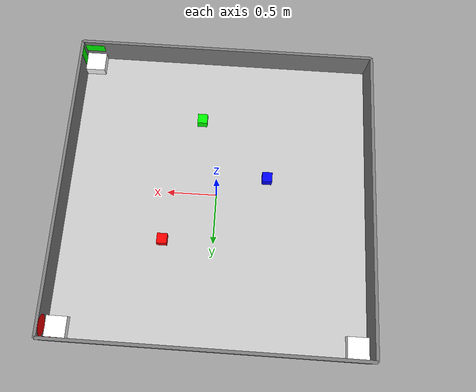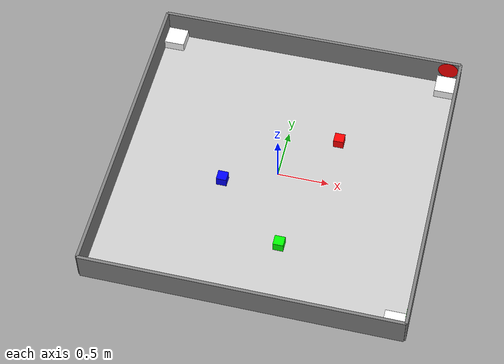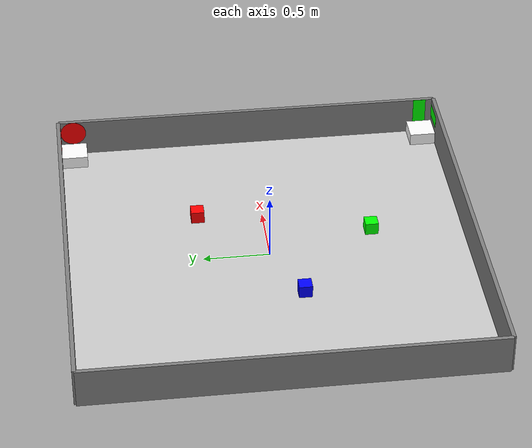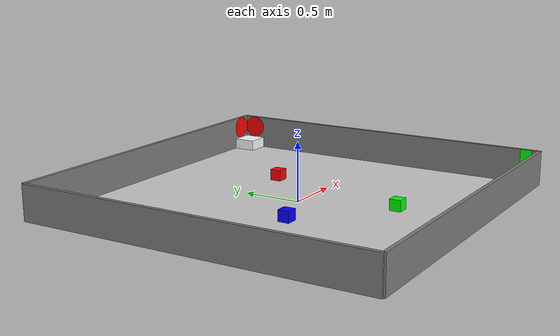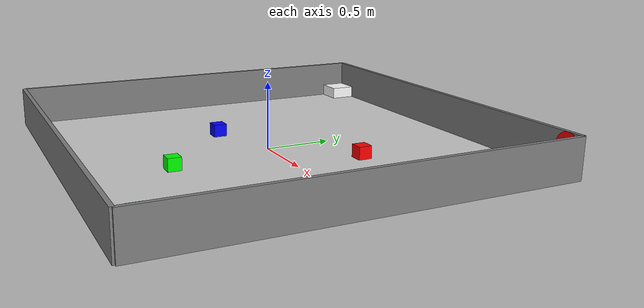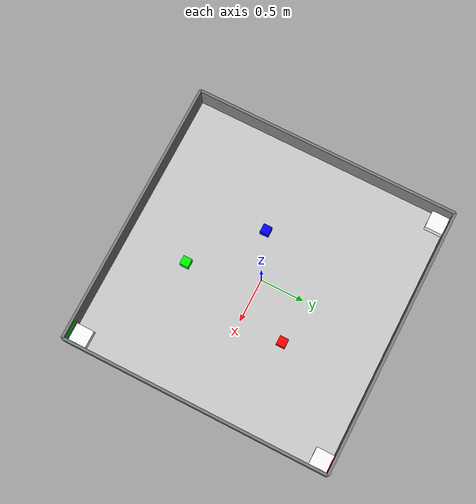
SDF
<sdf version="1.6">
 <world name="sorting_round">
  <light type="directional" name="sun">
   <pose>0 0 10 0 0 0</pose>
   <diffuse>0.8 0.8 0.8 1</diffuse>
   <specular>0.2 0.2 0.2 1</specular>
   <attenuation>
    <range>1000</range>
    <constant>0.9</constant>
    <linear>0.01</linear>
    <quadratic>0.001</quadratic>
   </attenuation>
   <direction>-0.5 0.1 -0.9</direction>
  </light>
  <model name="arena_floor">
   <static>true</static>
   <link name="link">
    <collision name="collision"><geometry><box><size>3 3 0.01</size></box></geometry></collision>
    <visual name="visual">
     <geometry><box><size>3 3 0.01</size></box></geometry>
     <material>
      <ambient>0.8 0.8 0.8 1</ambient>
      <diffuse>0.8 0.8 0.8 1</diffuse>
      <specular>0.1 0.1 0.1 1</specular>
     </material>
    </visual>
   </link>
  </model>
  <model name="arena_walls">
   <static>true</static>
   <pose>0 0 0.15 0 0 0</pose>
   <link name="link">
    <collision name="collision_north">
     <pose>0 1.515 0 0 0 0</pose>
     <geometry><box><size>3.03 0.03 0.3</size></box></geometry>
    </collision>
    <visual name="visual_north">
     <pose>0 1.515 0 0 0 0</pose>
     <geometry><box><size>3.03 0.03 0.3</size></box></geometry>
     <material><ambient>0.5 0.5 0.5 1</ambient><diffuse>0.5 0.5 0.5 1</diffuse></material>
    </visual>
    <collision name="collision_south">
     <pose>0 -1.515 0 0 0 0</pose>
     <geometry><box><size>3.03 0.03 0.3</size></box></geometry>
    </collision>
    <visual name="visual_south">
     <pose>0 -1.515 0 0 0 0</pose>
     <geometry><box><size>3.03 0.03 0.3</size></box></geometry>
     <material><ambient>0.5 0.5 0.5 1</ambient><diffuse>0.5 0.5 0.5 1</diffuse></material>
    </visual>
    <collision name="collision_east">
     <pose>1.515 0 0 0 0 0</pose>
     <geometry><box><size>0.03 3.03 0.3</size></box></geometry>
    </collision>
    <visual name="visual_east">
     <pose>1.515 0 0 0 0 0</pose>
     <geometry><box><size>0.03 3.03 0.3</size></box></geometry>
     <material><ambient>0.5 0.5 0.5 1</ambient><diffuse>0.5 0.5 0.5 1</diffuse></material>
    </visual>
    <collision name="collision_west">
     <pose>-1.515 0 0 0 0 0</pose>
     <geometry><box><size>0.03 3.03 0.3</size></box></geometry>
    </collision>
    <visual name="visual_west">
     <pose>-1.515 0 0 0 0 0</pose>
     <geometry><box><size>0.03 3.03 0.3</size></box></geometry>
     <material><ambient>0.5 0.5 0.5 1</ambient><diffuse>0.5 0.5 0.5 1</diffuse></material>
    </visual>
   </link>
  </model>
  <model name="platform_red">
   <static>true</static>
   <pose>1.4 1.4 0.05 0 0 0</pose>
   <link name="link">
    <visual name="visual">
     <geometry><box><size>0.2 0.2 0.1</size></box></geometry>
     <material><ambient>1 1 1 1</ambient><diffuse>1 1 1 1</diffuse></material>
    </visual>
    <collision name="collision"><geometry><box><size>0.2 0.2 0.1</size></box></geometry></collision>
   </link>
  </model>
  <model name="marking_red_circle_1">
   <static>true</static>
   <pose>1.499 1.4 0.2 0 1.5707 0</pose>
   <link name="link">
    <visual name="visual">
     <geometry><cylinder><radius>0.1</radius><length>0.001</length></cylinder></geometry>
     <material><ambient>1 0 0 1</ambient><diffuse>1 0 0 1</diffuse></material>
    </visual>
   </link>
  </model>
  <model name="marking_red_circle_2">
   <static>true</static>
   <pose>1.4 1.499 0.2 1.5707 0 0</pose>
   <link name="link">
    <visual name="visual">
     <geometry><cylinder><radius>0.1</radius><length>0.001</length></cylinder></geometry>
     <material><ambient>1 0 0 1</ambient><diffuse>1 0 0 1</diffuse></material>
    </visual>
   </link>
  </model>
  <model name="platform_blue">
   <static>true</static>
   <pose>-1.4 1.4 0.05 0 0 0</pose>
   <link name="link">
    <visual name="visual">
     <geometry><box><size>0.2 0.2 0.1</size></box></geometry>
     <material><ambient>1 1 1 1</ambient><diffuse>1 1 1 1</diffuse></material>
    </visual>
    <collision name="collision"><geometry><box><size>0.2 0.2 0.1</size></box></geometry></collision>
   </link>
  </model>
  <model name="platform_green">
   <static>true</static>
   <pose>1.4 -1.4 0.05 0 0 0</pose>
   <link name="link">
    <visual name="visual">
     <geometry><box><size>0.2 0.2 0.1</size></box></geometry>
     <material><ambient>1 1 1 1</ambient><diffuse>1 1 1 1</diffuse></material>
    </visual>
    <collision name="collision"><geometry><box><size>0.2 0.2 0.1</size></box></geometry></collision>
   </link>
  </model>
  <model name="marking_green_rect_1">
   <static>true</static>
   <pose>1.499 -1.4 0.2 0 1.5707 0</pose>
   <link name="link">
    <visual name="visual">
     <geometry><box><size>0.2 0.1 0.001</size></box></geometry>
     <material><ambient>0 1 0 1</ambient><diffuse>0 1 0 1</diffuse></material>
    </visual>
   </link>
  </model>
  <model name="marking_green_rect_2">
   <static>true</static>
   <pose>1.4 -1.499 0.2 1.5707 0 0</pose>
   <link name="link">
    <visual name="visual">
     <geometry><box><size>0.2 0.1 0.001</size></box></geometry>
     <material><ambient>0 1 0 1</ambient><diffuse>0 1 0 1</diffuse></material>
    </visual>
   </link>
  </model>
  <model name="cube_red">
   <pose>0.5 0.5 0.05 0 0 0</pose>
   <link name="link">
    <inertial>
     <mass>0.04</mass>
     <inertia>
      <ixx>0.000066</ixx>
      <ixy>0</ixy>
      <ixz>0</ixz>
      <iyy>0.000066</iyy>
      <iyz>0</iyz>
      <izz>0.000066</izz>
     </inertia>
    </inertial>
    <visual name="visual">
     <geometry><box><size>0.1 0.1 0.1</size></box></geometry>
     <material><ambient>1 0 0 1</ambient><diffuse>1 0 0 1</diffuse></material>
    </visual>
    <collision name="collision"><geometry><box><size>0.1 0.1 0.1</size></box></geometry></collision>
   </link>
  </model>
  <model name="cube_blue">
   <pose>-0.5 -0.2 0.05 0 0 0</pose>
   <link name="link">
    <inertial>
     <mass>0.04</mass>
     <inertia>
      <ixx>0.000066</ixx>
      <ixy>0</ixy>
      <ixz>0</ixz>
      <iyy>0.000066</iyy>
      <iyz>0</iyz>
      <izz>0.000066</izz>
     </inertia>
    </inertial>
    <visual name="visual">
     <geometry><box><size>0.1 0.1 0.1</size></box></geometry>
     <material><ambient>0 0 1 1</ambient><diffuse>0 0 1 1</diffuse></material>
    </visual>
    <collision name="collision"><geometry><box><size>0.1 0.1 0.1</size></box></geometry></collision>
   </link>
  </model>
  <model name="cube_green">
   <pose>0.2 -0.8 0.05 0 0 0</pose>
   <link name="link">
    <inertial>
     <mass>0.04</mass>
     <inertia>
      <ixx>0.000066</ixx>
      <ixy>0</ixy>
      <ixz>0</ixz>
      <iyy>0.000066</iyy>
      <iyz>0</iyz>
      <izz>0.000066</izz>
     </inertia>
    </inertial>
    <visual name="visual">
     <geometry><box><size>0.1 0.1 0.1</size></box></geometry>
     <material><ambient>0 1 0 1</ambient><diffuse>0 1 0 1</diffuse></material>
    </visual>
    <collision name="collision"><geometry><box><size>0.1 0.1 0.1</size></box></geometry></collision>
   </link>
  </model>
 </world>
</sdf>
